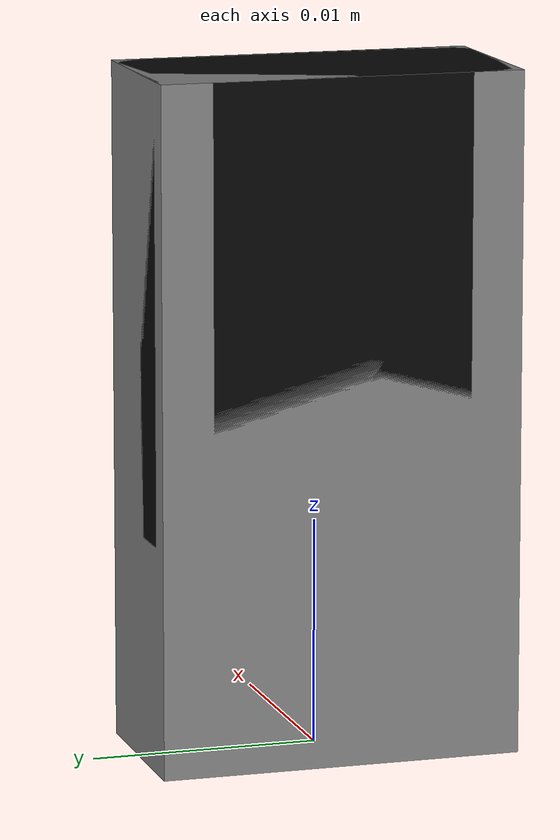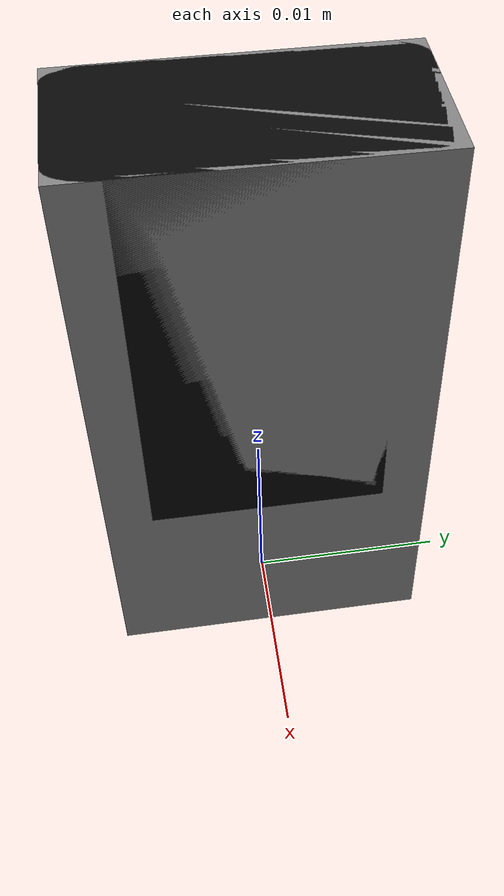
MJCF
<mujoco model="univtac_hdmi">
  <compiler angle="radian"/>
  <asset>
    <mesh name="hdmi_exact" file="../meshes/HDMI.obj"/>
    <material name="hdmi_black" rgba="0.025 0.025 0.025 1" specular="0.25" shininess="0.35"/>
  </asset>
  <worldbody>
    <body name="wrapper">
      <body name="object">
        <geom name="collision" type="box" pos="-0.000237426 0 0.015"
              size="0.004 0.008 0.015" group="0"
              density="1000" friction="2.5 0.01 0.001" solref="0.005 1"/>
        <geom name="visual" type="mesh" mesh="hdmi_exact" group="1"
              contype="0" conaffinity="0" material="hdmi_black"/>
        <site name="bottom" pos="0 0 0" size="0.001" rgba="0 0 0 0"/>
        <site name="top" pos="0 0 0.03" size="0.001" rgba="0 0 0 0"/>
        <site name="horizontal_radius" pos="0.004 0 0" size="0.001" rgba="0 0 0 0"/>
      </body>
    </body>
  </worldbody>
</mujoco>
